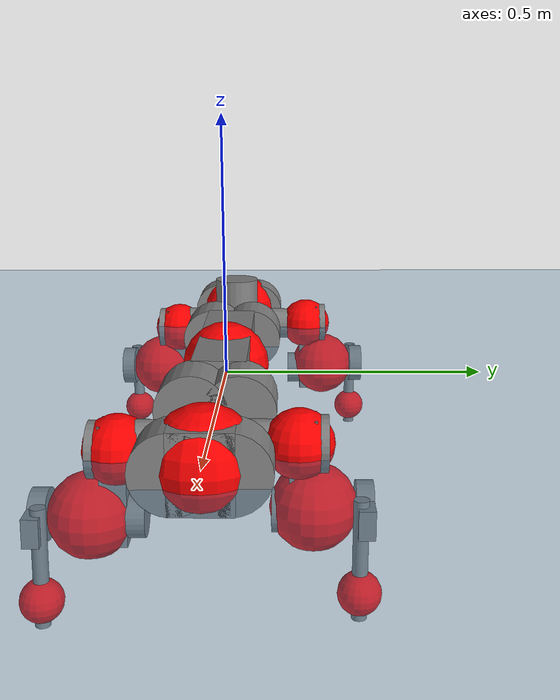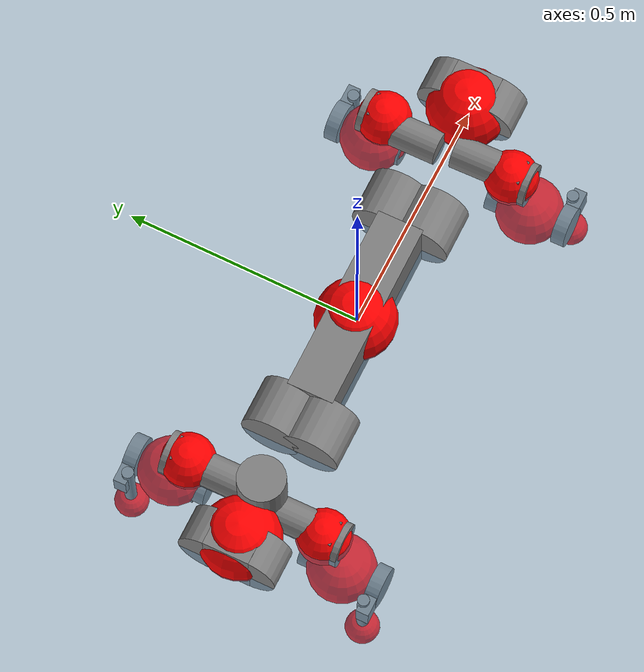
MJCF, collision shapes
<mujoco model="anymal_c">
  <compiler angle="radian" assetdir="assets" balanceinertia="true" inertiafromgeom="false"/>

  <option timestep="0.005" density="1.2" viscosity="2e-05"/>

  <size nkey="1"/>

  <visual>
    <quality shadowsize="8192"/>
    <map shadowclip="0.5"/>
  </visual>

  <default>
    <default class="/">
      <material specular="0" shininess="0.25"/>
      <geom contype="0" conaffinity="0" group="1" solref="-1000 -80"/>
      <site size="0.01 0.005 0.005" group="5"/>
      <general forcelimited="true" forcerange="-80 80" biastype="affine" gainprm="80" biasprm="0 -80 -2"/>
      <default class="anymal_c">
        <joint armature="0.01" damping="0.01" frictionloss="0.1"/>
        <default class="visual">
          <geom type="mesh" group="2"/>
          <default class="visual_zflip"/>
        </default>
        <default class="collision">
          <geom type="cylinder" group="3"/>
          <default class="foot">
            <geom size="0.03 0 0" type="sphere" condim="6" priority="1" friction="0.8 0.02 0.01" solimp="0.015 1 0.03"/>
          </default>
        </default>
      </default>
      <default class="reward_collision_sphere">
        <geom group="5" rgba="1 0 0 1"/>
      </default>
    </default>
  </default>

  <asset>
    <texture type="skybox" colorspace="auto" name="//unnamed_texture_0" builtin="gradient" rgb1="0.95 0.95 0.95" rgb2="0.95 0.95 0.95" width="100" height="600"/>
    <texture type="2d" colorspace="auto" name="texplane" builtin="checker" rgb1="0.345 0.575 0.748" rgb2="0.345 0.575 0.748" markrgb="1 1 1" width="512" height="512"/>
    <texture type="2d" colorspace="linear" name="base" file="base.png"/>
    <texture type="2d" colorspace="linear" name="top_shell" file="top_shell.png"/>
    <texture type="2d" colorspace="linear" name="bottom_shell" file="bottom_shell.png"/>
    <texture type="2d" colorspace="linear" name="remote" file="remote.png"/>
    <texture type="2d" colorspace="linear" name="hatch" file="hatch.png"/>
    <texture type="2d" colorspace="linear" name="handle" file="handle.png"/>
    <texture type="2d" colorspace="linear" name="face" file="face.png"/>
    <texture type="2d" colorspace="linear" name="battery" file="battery.png"/>
    <texture type="2d" colorspace="linear" name="lidar_cage" file="lidar_cage.png"/>
    <texture type="2d" colorspace="linear" name="depth_camera" file="depth_camera.png"/>
    <texture type="2d" colorspace="linear" name="wide_angle_camera" file="wide_angle_camera.png"/>
    <texture type="2d" colorspace="linear" name="lidar" file="lidar.png"/>
    <texture type="2d" colorspace="linear" name="drive" file="drive.png"/>
    <texture type="2d" colorspace="linear" name="hip_l" file="hip_l.png"/>
    <texture type="2d" colorspace="linear" name="shank_l" file="shank_l.png"/>
    <texture type="2d" colorspace="linear" name="foot" file="foot.png"/>
    <texture type="2d" colorspace="linear" name="thigh" file="thigh.png"/>
    <texture type="2d" colorspace="linear" name="shank_r" file="shank_r.png"/>
    <texture type="2d" colorspace="linear" name="hip_r" file="hip_r.png"/>
    <material name="MatPlane" class="/" texture="texplane" texuniform="true" texrepeat="2 2" specular="0.9" shininess="0.5"/>
    <material name="black_plastic" class="/" rgba="0.007 0.007 0.007 1"/>
    <material name="green" class="/" rgba="0.052 0.178 0.033 1"/>
    <material name="red" class="/" rgba="0.178 0.006 0.005 1"/>
    <material name="yellow" class="/" rgba="0.178 0.119 0.006 1"/>
    <material name="lwl" class="/" rgba="0.8 0.8 0.8 1"/>
    <material name="base" class="/" texture="base"/>
    <material name="top_shell" class="/" texture="top_shell"/>
    <material name="bottom_shell" class="/" texture="bottom_shell"/>
    <material name="hip_l" class="/" texture="hip_l"/>
    <material name="thigh" class="/" texture="thigh"/>
    <material name="shank_l" class="/" texture="shank_l"/>
    <material name="foot" class="/" texture="foot"/>
    <material name="hip_r" class="/" texture="hip_r"/>
    <material name="shank" class="/" texture="shank_r"/>
    <material name="hatch" class="/" texture="hatch"/>
    <material name="remote" class="/" texture="remote"/>
    <material name="handle" class="/" texture="handle"/>
    <material name="face" class="/" texture="face"/>
    <material name="depth_camera" class="/" texture="depth_camera"/>
    <material name="wide_angle_camera" class="/" texture="wide_angle_camera"/>
    <material name="battery" class="/" texture="battery"/>
    <material name="lidar_cage" class="/" texture="lidar_cage"/>
    <material name="lidar" class="/" texture="lidar"/>
    <material name="drive" class="/" texture="drive"/>
    <mesh name="base_0" class="/" file="base_0.obj"/>
    <mesh name="base_1" class="/" file="base_1.obj"/>
    <mesh name="base_2" class="/" file="base_2.obj"/>
    <mesh name="base_3" class="/" file="base_3.obj"/>
    <mesh name="base_4" class="/" file="base_4.obj"/>
    <mesh name="base_5" class="/" file="base_5.obj"/>
    <mesh name="top_shell" class="/" file="top_shell.obj"/>
    <mesh name="bottom_shell" class="/" file="bottom_shell.obj"/>
    <mesh name="remote" class="/" file="remote.obj"/>
    <mesh name="handle" class="/" file="handle.obj"/>
    <mesh name="face" class="/" file="face.obj"/>
    <mesh name="wide_angle_camera" class="/" file="wide_angle_camera.obj"/>
    <mesh name="depth_camera" class="/" file="depth_camera.obj"/>
    <mesh name="battery" class="/" file="battery.obj"/>
    <mesh name="lidar_cage" class="/" file="lidar_cage.obj"/>
    <mesh name="lidar" class="/" file="lidar.obj"/>
    <mesh name="drive" class="/" file="drive.obj"/>
    <mesh name="hip_l" class="/" file="hip_l.obj"/>
    <mesh name="thigh" class="/" file="thigh.obj"/>
    <mesh name="shank_l" class="/" file="shank_l.obj"/>
    <mesh name="foot" class="/" file="foot.obj"/>
    <mesh name="hip_r" class="/" file="hip_r.obj"/>
    <mesh name="hatch" class="/" file="hatch.obj"/>
    <mesh name="shank_r" class="/" file="shank_r.obj"/>
  </asset>

  <worldbody>
    <geom name="floor" class="/" size="100 100 0.125" type="plane" group="0" material="MatPlane"/>
    <light name="toplight_shadow" class="/" pos="0 0 5" dir="0.0990148 0.0990148 -0.990148" type="directional" ambient="0.04 0.04 0.04" diffuse="0.55 0.55 0.55" specular="0.12 0.12 0.12"/>
    <light name="toplight_fill" class="/" pos="0 0 5" dir="0.0990148 0.0990148 -0.990148" type="directional" castshadow="false" ambient="0.04 0.04 0.04" diffuse="0.3 0.3 0.3" specular="0.08 0.08 0.08"/>
    <body name="trunk" childclass="anymal_c" pos="-0.00326088 5.63241e-05 0.0156493" quat="0.999973 -0.00473462 -0.00262862 0.00491661">
      <inertial pos="0.000377952 -0.0127923 0.0214987" quat="0.521045 0.446878 0.486634 0.54037" mass="6.01822" diaginertia="0.981182 0.0361269 0.00143833"/>
      <joint name="//unnamed_joint_0" type="free" armature="0" damping="0" frictionloss="0"/>
      <geom name="//unnamed_geom_1" class="visual" material="green" mesh="base_0"/>
      <geom name="//unnamed_geom_2" class="visual" material="yellow" mesh="base_1"/>
      <geom name="//unnamed_geom_3" class="visual" material="red" mesh="base_2"/>
      <geom name="//unnamed_geom_4" class="visual" material="black_plastic" mesh="base_3"/>
      <geom name="//unnamed_geom_5" class="visual" material="lwl" mesh="base_4"/>
      <geom name="//unnamed_geom_6" class="visual" material="base" mesh="base_5"/>
      <geom name="trunk_1" class="collision" size="0.203242 0.0490585 0.0630753" type="box"/>
      <geom name="trunk_2" class="collision" size="0.0630753 0.0508106" pos="0.246169 0.0409882 0" quat="0.707107 0 0.707107 0"/>
      <geom name="trunk_3" class="collision" size="0.0630753 0.0508106" pos="-0.246169 0.0409882 0" quat="0.707107 0 0.707107 0"/>
      <geom name="trunk_4" class="collision" size="0.0630753 0.0508106" pos="0.246169 -0.0409882 0" quat="0.707107 0 0.707107 0"/>
      <geom name="trunk_5" class="collision" size="0.0630753 0.0508106" pos="-0.246169 -0.0409882 0" quat="0.707107 0 0.707107 0"/>
      <geom name="//unnamed_geom_12" class="visual" material="top_shell" mesh="top_shell"/>
      <geom name="//unnamed_geom_13" class="visual" material="bottom_shell" mesh="bottom_shell"/>
      <geom name="//unnamed_geom_14" class="visual" material="remote" mesh="remote"/>
      <geom name="//unnamed_geom_15" class="visual" material="handle" mesh="handle"/>
      <geom name="//unnamed_geom_16" class="visual" pos="0.469136 0 0" quat="1 0 0 0" material="face" mesh="face"/>
      <geom name="trunk_6" class="collision" size="0.038546 0.0490585 0.0630753" pos="0.531386 0 0" type="box"/>
      <geom name="//unnamed_geom_18" class="collision" size="0.0630753 0.038546" pos="0.531386 0.0409882 0" quat="0.707107 0 0.707107 0"/>
      <geom name="//unnamed_geom_19" class="collision" size="0.0630753 0.038546" pos="0.531386 -0.0409882 0" quat="0.707107 0 0.707107 0"/>
      <geom name="//unnamed_geom_20" class="visual" pos="0.52247 0 -0.00557178" quat="0.965926 0 0.258819 0" material="depth_camera" mesh="depth_camera"/>
      <geom name="//unnamed_geom_21" class="visual" pos="0.58062 0 0.00576571" material="wide_angle_camera" mesh="wide_angle_camera"/>
      <geom name="//unnamed_geom_22" class="visual_zflip" pos="-0.469136 0 0" quat="0 0 0 1" material="face" mesh="face"/>
      <geom name="trunk_7" class="collision" size="0.038546 0.0490585 0.0630753" pos="-0.531386 0 0" quat="0 0 0 1" type="box"/>
      <geom name="//unnamed_geom_24" class="collision" size="0.0630753 0.038546" pos="-0.531386 -0.0409882 0" quat="0 -0.707107 0 0.707107"/>
      <geom name="//unnamed_geom_25" class="collision" size="0.0630753 0.038546" pos="-0.531386 0.0409882 0" quat="0 -0.707107 0 0.707107"/>
      <geom name="//unnamed_geom_26" class="visual" pos="-0.52247 0 -0.00557178" quat="0 -0.258819 0 0.965926" material="depth_camera" mesh="depth_camera"/>
      <geom name="//unnamed_geom_27" class="visual_zflip" pos="-0.58062 0 0.00576571" quat="0 0 0 1" material="wide_angle_camera" mesh="wide_angle_camera"/>
      <geom name="//unnamed_geom_28" class="visual" material="battery" mesh="battery"/>
      <geom name="//unnamed_geom_29" class="visual" pos="0 0.0375716 0.0168633" quat="0.683013 -0.183013 0.183013 0.683013" material="depth_camera" mesh="depth_camera"/>
      <geom name="//unnamed_geom_30" class="visual" pos="0 -0.0375716 0.0168633" quat="0.683013 0.183013 0.183013 -0.683013" material="depth_camera" mesh="depth_camera"/>
      <geom name="//unnamed_geom_31" class="visual" pos="-0.41198 0 0.0283086" quat="1 0 0 0" material="lidar_cage" mesh="lidar_cage"/>
      <geom name="trunk_8" class="collision" size="0.0490585 0.0420502" pos="-0.41198 0 0.0514177"/>
      <geom name="//unnamed_geom_33" class="visual" pos="-0.41198 -0.000214614 0.0547685" quat="0.707107 0 0 -0.707107" material="lidar" mesh="lidar"/>
      <geom name="//unnamed_geom_34" class="visual" pos="0.339431 0.0608255 3.45682e-09" quat="0.258819 0.965926 0 0" material="drive" mesh="drive"/>
      <geom name="//unnamed_geom_35" class="visual" pos="0.339431 -0.0608255 -3.45682e-09" quat="0.258819 -0.965926 0 0" material="drive" mesh="drive"/>
      <geom name="//unnamed_geom_36" class="visual" pos="-0.339431 0.0608255 -3.45682e-09" quat="0 0 0.965926 -0.258819" material="drive" mesh="drive"/>
      <geom name="//unnamed_geom_37" class="visual" pos="-0.339431 -0.0608255 3.45682e-09" quat="0 0 -0.965926 -0.258819" material="drive" mesh="drive"/>
      <geom name="//unnamed_geom_38" class="visual" pos="0.13129 0 0.028116" quat="1 0 0 0" material="hatch" mesh="hatch"/>
      <geom name="//unnamed_geom_39" class="reward_collision_sphere" size="0.0841003"/>
      <geom name="//unnamed_geom_40" class="reward_collision_sphere" size="0.0841003" pos="0.509316 0 0"/>
      <geom name="//unnamed_geom_41" class="reward_collision_sphere" size="0.0841003" pos="-0.509316 0 0"/>
      <site name="imu" pos="0.259657 -0.0436249 0.0788889" size="0.00700836"/>
      <camera name="track" pos="0 -1.17109 0" quat="0.707107 0.707107 0 0" mode="trackcom"/>
      <camera name="ego_camera" pos="0.509316 0 -0.015406" quat="-0.5 -0.5 0.5 0.5"/>
      <body name="LF_HIP" pos="0.339298 0.0542469 -0.00742643" quat="0.259094 0.965852 -0.000851555 -0.000196729">
        <inertial pos="0.0782228 -0.00845465 0.0119931" quat="-0.173715 0.744268 -0.108204 0.635752" mass="1.06013" diaginertia="0.0104097 0.000406802 3.09228e-05"/>
        <joint name="LF_HAA" pos="0 0 0" axis="0.997749 -0.0616264 0.0264312" stiffness="0.0575692" range="-0.714731 0.307535" armature="0.00732186" damping="0.0654197" frictionloss="0.0384061"/>
        <geom name="//unnamed_geom_42" class="visual" pos="0 0.000203349 -3.33999e-05" quat="0.258819 -0.965926 0 0" material="hip_l" mesh="hip_l"/>
        <geom name="//unnamed_geom_43" class="visual" pos="0.0677956 -0.0748851 -0.0417527" quat="0.183013 -0.683013 0.683013 0.183013" material="drive" mesh="drive"/>
        <geom name="//unnamed_geom_44" class="collision" size="0.0350418 0.0490585" pos="0.0677956 -0.007003 -0.00265947" quat="-0.353553 -0.612372 0.612372 -0.353553"/>
        <body name="LF_THIGH" pos="0.0803304 -0.0505517 -0.0287981" quat="0.183015 -0.683012 0.683013 0.183014">
          <inertial pos="0.0348347 -7.11918e-05 -0.0927652" quat="0.991155 0.0212474 -0.0834047 0.101019" mass="1.15801" diaginertia="0.0618873 0.00241115 4.79828e-05"/>
          <joint name="LF_HFE" pos="0 0 0" axis="0.999986 -0.00533435 1.12777e-05" stiffness="0.0260187" range="-2.9533 3.12832" armature="0.0104545" damping="0" frictionloss="0.0700517"/>
          <geom name="//unnamed_geom_45" class="visual" pos="0.0108686 1.71263e-05 0" quat="0.707107 0 0 -0.707107" material="thigh" mesh="thigh"/>
          <geom name="//unnamed_geom_46" class="collision" size="0.0455543 0.0280334" pos="0.0452725 0 0" quat="0.5 0.5 -0.5 -0.5"/>
          <geom name="//unnamed_geom_47" class="collision" size="0.0262814 0.0210251 0.099038" pos="0.0339544 0 -0.0544272" quat="0.707107 0 0 -0.707107" type="box"/>
          <geom name="//unnamed_geom_48" class="visual" pos="0.113521 0 -0.109768" quat="1 0 0 0" material="drive" mesh="drive"/>
          <geom name="//unnamed_geom_49" class="collision" size="0.0350418 0.0490585" pos="0.0342939 0 -0.109768" quat="0.707107 0 0.707107 0"/>
          <geom name="//unnamed_geom_50" class="reward_collision_sphere" size="0.0560669" pos="0.0282953 0 0"/>
          <body name="LF_SHANK" pos="0.108044 0.00267432 -0.105339" quat="1 -3.84221e-05 5.53497e-05 1.59985e-05">
            <inertial pos="0.0229923 -0.0209011 -0.0299902" quat="0.99227 -0.119826 -0.00370936 -0.0320558" mass="0.205362" diaginertia="0.0226375 0.000624452 9.64493e-06"/>
            <joint name="LF_KFE" pos="0 0 0" axis="0.999998 0.0018497 -0.000882727" stiffness="0.00834227" range="-2.80893 2.94612" armature="0.00950815" damping="0.031427" frictionloss="0.013848"/>
            <geom name="//unnamed_geom_51" class="visual" pos="0.003544 0.0188968 0" quat="0.707107 0 0 -0.707107" material="shank_l" mesh="shank_l"/>
            <geom name="LF_kfe_act" class="collision" size="0.0420502 0.0140167" pos="0.0226362 0 0" quat="0.5 0.5 -0.5 -0.5"/>
            <geom name="//unnamed_geom_53" class="collision" size="0.0402974 0.0236532 0.0133159" pos="0.0226362 -0.0336683 0" quat="0.5 0.5 -0.5 -0.5" type="box"/>
            <geom name="//unnamed_geom_54" class="visual" pos="0.0147693 -0.045409 -0.130169" quat="0.382683 0 0 -0.92388" material="foot" mesh="foot"/>
            <geom name="LF_calf" class="collision" size="0.0122646 0.0989945" pos="0.0147702 -0.0514987 -0.0650847" quat="0.707107 0 0 -0.707107"/>
            <geom name="LF_foot" class="foot" size="0.0286207" pos="0.0147702 -0.0514987 -0.121504" quat="0.707107 0 0 -0.707107"/>
            <geom name="//unnamed_geom_57" class="reward_collision_sphere" size="0.0700836" pos="-0.0565906 0 0"/>
            <geom name="//unnamed_geom_58" class="reward_collision_sphere" size="0.0350418" pos="0.0147702 -0.0514987 -0.121504"/>
            <site name="LF_foot" class="foot" pos="0.0147702 -0.0514987 -0.121504" quat="0.707107 0 0 -0.707107" size="0.00700836"/>
          </body>
        </body>
      </body>
      <body name="RF_HIP" pos="0.348833 -0.0614691 -0.00556618" quat="0.254058 -0.967168 -0.00477889 0.00417481">
        <inertial pos="0.0715704 0.00915184 -0.00483035" quat="0.106208 0.733266 0.114495 0.661764" mass="0.826802" diaginertia="0.0111167 0.000368837 2.87296e-05"/>
        <joint name="RF_HAA" pos="0 0 0" axis="0.998932 0.0419941 0.0192702" stiffness="0.0647441" range="-0.179448 0.901009" armature="0.00538326" damping="0.0594319" frictionloss="0.0333712"/>
        <geom name="//unnamed_geom_59" class="visual" pos="0 -0.000203347 -3.33998e-05" quat="0.258819 0.965926 0 0" material="hip_r" mesh="hip_r"/>
        <geom name="//unnamed_geom_60" class="visual" pos="0.0677955 0.0748851 -0.0417527" quat="0.183013 0.683013 0.683013 -0.183013" material="drive" mesh="drive"/>
        <geom name="//unnamed_geom_61" class="collision" size="0.0350418 0.0490585" pos="0.0677956 0.007003 -0.00265947" quat="-0.353553 0.612372 0.612372 0.353553"/>
        <body name="RF_THIGH" pos="0.0672262 0.0522461 -0.013858" quat="0.180456 0.681398 0.685522 -0.182186">
          <inertial pos="0.0433224 -0.000526516 -0.0882229" quat="0.992959 0.0235624 -0.0781443 0.0858543" mass="0.888944" diaginertia="0.0546413 0.00235806 3.1626e-05"/>
          <joint name="RF_HFE" pos="0 0 0" axis="0.999991 0.00410112 0.000911862" range="-3.10731 3.33106" armature="0.0102119" damping="0.0855633" frictionloss="0.113345"/>
          <geom name="//unnamed_geom_62" class="visual" pos="0.0108686 1.71263e-05 0" quat="0.707107 0 0 -0.707107" material="thigh" mesh="thigh"/>
          <geom name="//unnamed_geom_63" class="collision" size="0.0455543 0.0280334" pos="0.0452725 0 0" quat="0.5 0.5 0.5 0.5"/>
          <geom name="//unnamed_geom_64" class="collision" size="0.0262814 0.0210251 0.099038" pos="0.0339544 0 -0.0544272" quat="0.707107 0 0 0.707107" type="box"/>
          <geom name="//unnamed_geom_65" class="visual" pos="0.113521 0 -0.109768" quat="1 0 0 0" material="drive" mesh="drive"/>
          <geom name="//unnamed_geom_66" class="collision" size="0.0350418 0.0490585" pos="0.0342939 0 -0.109768" quat="0.707107 0 0.707107 0"/>
          <geom name="//unnamed_geom_67" class="reward_collision_sphere" size="0.0560669" pos="0.0282953 0 0"/>
          <body name="RF_SHANK" pos="0.128898 -0.00261709 -0.109553" quat="0.999997 -0.00130079 -0.00182268 -0.000673127">
            <inertial pos="0.0116529 0.0501572 -0.0434757" quat="0.980224 0.188047 -0.00921069 0.0609456" mass="0.250552" diaginertia="0.0228275 0.000622438 1.26385e-05"/>
            <joint name="RF_KFE" pos="0 0 0" axis="1 -0.000480079 -0.000523651" stiffness="0.02421" range="-3.11423 3.20474" armature="0.00764467" damping="0.0598707" frictionloss="0.100159"/>
            <geom name="//unnamed_geom_68" class="visual" pos="0.00354398 -0.0188968 0" quat="0.707107 0 0 0.707107" material="shank" mesh="shank_r"/>
            <geom name="RF_kfe_act" class="collision" size="0.0420502 0.0140167" pos="0.0226362 0 0" quat="0.5 0.5 0.5 0.5"/>
            <geom name="//unnamed_geom_70" class="collision" size="0.0402974 0.0236532 0.0133159" pos="0.0226362 0.0336683 0" quat="0.5 0.5 0.5 0.5" type="box"/>
            <geom name="//unnamed_geom_71" class="visual" pos="0.014771 0.045409 -0.130169" quat="0.382683 0 0 0.92388" material="foot" mesh="foot"/>
            <geom name="RF_calf" class="collision" size="0.0122646 0.0989945" pos="0.0147702 0.0514987 -0.0650847" quat="0.707107 0 0 0.707107"/>
            <geom name="RF_foot" class="foot" size="0.032087" pos="0.0147702 0.0514987 -0.121504" quat="0.707107 0 0 0.707107"/>
            <geom name="//unnamed_geom_74" class="reward_collision_sphere" size="0.0700836" pos="-0.0565906 0 0"/>
            <geom name="//unnamed_geom_75" class="reward_collision_sphere" size="0.0350418" pos="0.0147702 0.0514987 -0.121504"/>
            <site name="RF_foot" class="foot" pos="0.0147702 0.0514987 -0.121504" quat="0.707107 0 0 0.707107" size="0.00700836"/>
          </body>
        </body>
      </body>
      <body name="LH_HIP" pos="-0.338475 0.0718375 -0.011194" quat="0.00141586 -0.00212369 0.966383 -0.257095">
        <inertial pos="0.0704247 0.0230589 0.0125281" quat="0.114205 0.69983 0.138893 0.691306" mass="1.11194" diaginertia="0.0134894 0.000344236 3.59662e-05"/>
        <joint name="LH_HAA" pos="0 0 0" axis="0.99774 0.0619101 -0.0261052" range="-0.218911 0.432086" armature="0.00238568" damping="0.00646613" frictionloss="0.06841"/>
        <geom name="//unnamed_geom_76" class="visual" pos="0 -0.000203347 -3.33998e-05" quat="-0.258819 -0.965926 0 0" material="hip_r" mesh="hip_r"/>
        <geom name="//unnamed_geom_77" class="visual" pos="0.0677955 0.0748851 -0.0417527" quat="0.183013 0.683013 0.683013 -0.183013" material="drive" mesh="drive"/>
        <geom name="//unnamed_geom_78" class="collision" size="0.0350418 0.0490585" pos="0.0677956 0.007003 -0.00265947" quat="-0.353553 0.612372 0.612372 0.353553"/>
        <body name="LH_THIGH" pos="0.0668263 0.055907 -0.0314234" quat="0.185522 0.685728 0.679065 -0.185013">
          <inertial pos="0.0184581 0.0115811 -0.0783749" quat="0.992752 -0.00546196 -0.0805513 0.0890184" mass="0.851279" diaginertia="0.0361937 0.00155032 2.41283e-05"/>
          <joint name="LH_HFE" pos="0 0 0" axis="0.996687 0.079345 -0.0178576" range="-2.93183 3.10427" armature="0.00574453" damping="0.0875787" frictionloss="0.0416522"/>
          <geom name="//unnamed_geom_79" class="visual" pos="0.0108686 1.71263e-05 0" quat="0.707107 0 0 -0.707107" material="thigh" mesh="thigh"/>
          <geom name="//unnamed_geom_80" class="collision" size="0.0455543 0.0280334" pos="0.0452725 0 0" quat="0.5 0.5 -0.5 -0.5"/>
          <geom name="//unnamed_geom_81" class="collision" size="0.0262814 0.0210251 0.099038" pos="0.0339544 0 -0.0544272" quat="0.707107 0 0 -0.707107" type="box"/>
          <geom name="//unnamed_geom_82" class="visual" pos="0.113521 0 -0.109768" quat="1 0 0 0" material="drive" mesh="drive"/>
          <geom name="//unnamed_geom_83" class="collision" size="0.0350418 0.0490585" pos="0.0342939 0 -0.109768" quat="0.707107 0 0.707107 0"/>
          <geom name="//unnamed_geom_84" class="reward_collision_sphere" size="0.0560669" pos="0.0282953 0 0"/>
          <body name="LH_SHANK" pos="0.123439 -0.000449058 -0.0995726" quat="0.999981 -0.00494268 0.00345599 -0.00109583">
            <inertial pos="0.0214767 0.0248043 -0.0151556" quat="0.986779 0.15607 0.0413273 -0.0141994" mass="0.22624" diaginertia="0.021727 0.000806211 9.77269e-06"/>
            <joint name="LH_KFE" pos="0 0 0" axis="0.999999 0.001245 0.000317868" stiffness="0.019981" range="-3.22024 3.47535" armature="0.00235617" damping="0.0824142" frictionloss="0.0684742"/>
            <geom name="//unnamed_geom_85" class="visual" pos="0.00354398 -0.0188968 0" quat="-0.707107 0 0 -0.707107" material="shank" mesh="shank_r"/>
            <geom name="LH_kfe_act" class="collision" size="0.0420502 0.0140167" pos="0.0226362 0 0" quat="0.5 0.5 -0.5 -0.5"/>
            <geom name="//unnamed_geom_87" class="collision" size="0.0402974 0.0236532 0.0133159" pos="0.0226362 0.0336683 0" quat="0.5 0.5 -0.5 -0.5" type="box"/>
            <geom name="//unnamed_geom_88" class="visual" pos="0.014771 0.045409 -0.130169" quat="-0.382683 0 0 -0.92388" material="foot" mesh="foot"/>
            <geom name="LH_calf" class="collision" size="0.0122646 0.0989945" pos="0.0147702 0.0514987 -0.0650847" quat="0.707107 0 0 -0.707107"/>
            <geom name="LH_foot" class="foot" size="0.0153993" pos="0.0147702 0.0514987 -0.121504" quat="0.707107 0 0 -0.707107"/>
            <geom name="//unnamed_geom_91" class="reward_collision_sphere" size="0.0700836" pos="-0.0565906 0 0"/>
            <geom name="//unnamed_geom_92" class="reward_collision_sphere" size="0.0350418" pos="0.0147702 0.0514987 -0.121504"/>
            <site name="LH_foot" class="foot" pos="0.0147702 0.0514987 -0.121504" quat="0.707107 0 0 -0.707107" size="0.00700836"/>
          </body>
        </body>
      </body>
      <body name="RH_HIP" pos="-0.35604 -0.0633067 -0.0138848" quat="0.000957298 0.000529188 -0.96581 -0.259248">
        <inertial pos="0.0767352 0.000950681 -0.00330555" quat="-0.194013 0.694248 -0.112192 0.683953" mass="0.932456" diaginertia="0.00711627 0.000269222 1.98864e-05"/>
        <joint name="RH_HAA" pos="0 0 0" axis="0.996495 0.0758734 0.0352146" range="-0.554825 0.503171" armature="0.00722393" damping="0.0212327" frictionloss="0.0121928"/>
        <geom name="//unnamed_geom_93" class="visual" pos="0 0.000203349 -3.33999e-05" quat="-0.258819 0.965926 0 0" material="hip_l" mesh="hip_l"/>
        <geom name="//unnamed_geom_94" class="visual" pos="0.0677956 -0.0748851 -0.0417527" quat="-0.183013 0.683013 -0.683013 -0.183013" material="drive" mesh="drive"/>
        <geom name="//unnamed_geom_95" class="collision" size="0.0350418 0.0490585" pos="0.0677956 -0.007003 -0.00265947" quat="0.353553 0.612372 -0.612372 0.353553"/>
        <body name="RH_THIGH" pos="0.0709425 -0.0485655 -0.0104048" quat="-0.181468 0.682916 -0.683479 -0.183173">
          <inertial pos="0.027158 0.00911351 -0.0806807" quat="0.988635 0.0355234 -0.08626 0.117892" mass="1.37036" diaginertia="0.0504155 0.00222642 3.57927e-05"/>
          <joint name="RH_HFE" pos="0 0 0" axis="0.999216 -0.0150297 -0.0366175" range="-3.14385 3.38223" armature="0.00750792" damping="0.0367865" frictionloss="0.0894988"/>
          <geom name="//unnamed_geom_96" class="visual" pos="0.0108686 1.71263e-05 0" quat="0.707107 0 0 -0.707107" material="thigh" mesh="thigh"/>
          <geom name="//unnamed_geom_97" class="collision" size="0.0455543 0.0280334" pos="0.0452725 0 0" quat="0.5 0.5 0.5 0.5"/>
          <geom name="//unnamed_geom_98" class="collision" size="0.0262814 0.0210251 0.099038" pos="0.0339544 0 -0.0544272" quat="0.707107 0 0 0.707107" type="box"/>
          <geom name="//unnamed_geom_99" class="visual" pos="0.113521 0 -0.109768" quat="1 0 0 0" material="drive" mesh="drive"/>
          <geom name="//unnamed_geom_100" class="collision" size="0.0350418 0.0490585" pos="0.0342939 0 -0.109768" quat="0.707107 0 0.707107 0"/>
          <geom name="//unnamed_geom_101" class="reward_collision_sphere" size="0.0560669" pos="0.0282953 0 0"/>
          <body name="RH_SHANK" pos="0.128275 -0.0119383 -0.0981712" quat="0.999965 -0.000880376 0.00801456 -0.00236296">
            <inertial pos="-0.000187803 -0.0362932 -0.0307509" quat="0.990796 -0.0969557 0.0033538 -0.0944027" mass="0.187125" diaginertia="0.0173277 0.000493713 9.82686e-06"/>
            <joint name="RH_KFE" pos="0 0 0" axis="0.996748 0.0104242 0.0799013" stiffness="0.0737128" range="-3.41064 3.24721" armature="0.00690137" damping="0.077146" frictionloss="0.0900153"/>
            <geom name="//unnamed_geom_102" class="visual" pos="0.003544 0.0188968 0" quat="0.707107 0 0 -0.707107" material="shank_l" mesh="shank_l"/>
            <geom name="RH_kfe_act" class="collision" size="0.0420502 0.0140167" pos="0.0226362 0 0" quat="0.5 0.5 0.5 0.5"/>
            <geom name="//unnamed_geom_104" class="collision" size="0.0402974 0.0236532 0.0133159" pos="0.0226362 -0.0336683 0" quat="0.5 0.5 0.5 0.5" type="box"/>
            <geom name="//unnamed_geom_105" class="visual" pos="0.0147693 -0.045409 -0.130169" quat="0.382683 0 0 -0.92388" material="foot" mesh="foot"/>
            <geom name="RH_calf" class="collision" size="0.0122646 0.0989945" pos="0.0147702 -0.0514987 -0.0650847" quat="0.707107 0 0 0.707107"/>
            <geom name="RH_foot" class="foot" size="0.0254508" pos="0.0147702 -0.0514987 -0.121504" quat="0.707107 0 0 0.707107"/>
            <geom name="//unnamed_geom_108" class="reward_collision_sphere" size="0.0700836" pos="-0.0565906 0 0"/>
            <geom name="//unnamed_geom_109" class="reward_collision_sphere" size="0.0350418" pos="0.0147702 -0.0514987 -0.121504"/>
            <site name="RH_foot" class="foot" pos="0.0147702 -0.0514987 -0.121504" quat="0.707107 0 0 0.707107" size="0.00700836"/>
          </body>
        </body>
      </body>
    </body>
  </worldbody>

  <contact>
    <pair class="/" geom1="floor" geom2="LF_foot" name="//unnamed_contact_0"/>
    <pair class="/" geom1="floor" geom2="RF_foot" name="//unnamed_contact_1"/>
    <pair class="/" geom1="floor" geom2="LH_foot" name="//unnamed_contact_2"/>
    <pair class="/" geom1="floor" geom2="RH_foot" name="//unnamed_contact_3"/>
  </contact>

  <actuator>
    <general name="LF_HAA" class="/" joint="LF_HAA" forcerange="-57.5773 57.5773" gainprm="49.7237" biasprm="0 -49.7237 -1.6361"/>
    <general name="LF_HFE" class="/" joint="LF_HFE" forcerange="-47.1666 47.1666" gainprm="49.7237" biasprm="0 -49.7237 -1.6361"/>
    <general name="LF_KFE" class="/" joint="LF_KFE" forcerange="-36.0738 36.0738" gainprm="49.7237" biasprm="0 -49.7237 -1.6361"/>
    <general name="RF_HAA" class="/" joint="RF_HAA" forcerange="-64.3283 64.3283" gainprm="49.7237" biasprm="0 -49.7237 -1.6361"/>
    <general name="RF_HFE" class="/" joint="RF_HFE" forcerange="-36.7136 36.7136" gainprm="49.7237" biasprm="0 -49.7237 -1.6361"/>
    <general name="RF_KFE" class="/" joint="RF_KFE" forcerange="-56.5342 56.5342" gainprm="49.7237" biasprm="0 -49.7237 -1.6361"/>
    <general name="LH_HAA" class="/" joint="LH_HAA" forcerange="-58.5792 58.5792" gainprm="49.7237" biasprm="0 -49.7237 -1.6361"/>
    <general name="LH_HFE" class="/" joint="LH_HFE" forcerange="-88.6661 88.6661" gainprm="49.7237" biasprm="0 -49.7237 -1.6361"/>
    <general name="LH_KFE" class="/" joint="LH_KFE" forcerange="-26.3895 26.3895" gainprm="49.7237" biasprm="0 -49.7237 -1.6361"/>
    <general name="RH_HAA" class="/" joint="RH_HAA" forcerange="-57.3909 57.3909" gainprm="49.7237" biasprm="0 -49.7237 -1.6361"/>
    <general name="RH_HFE" class="/" joint="RH_HFE" forcerange="-70.3252 70.3252" gainprm="49.7237" biasprm="0 -49.7237 -1.6361"/>
    <general name="RH_KFE" class="/" joint="RH_KFE" forcerange="-35.2054 35.2054" gainprm="49.7237" biasprm="0 -49.7237 -1.6361"/>
  </actuator>

  <sensor>
    <gyro site="imu" name="imu_angular_velocity"/>
    <velocimeter site="imu" name="imu_linear_velocity"/>
    <framelinvel objtype="site" objname="LF_foot" name="LF_foot_global_linear_velocity"/>
    <framelinvel objtype="site" objname="RF_foot" name="RF_foot_global_linear_velocity"/>
    <framelinvel objtype="site" objname="LH_foot" name="LH_foot_global_linear_velocity"/>
    <framelinvel objtype="site" objname="RH_foot" name="RH_foot_global_linear_velocity"/>
  </sensor>

  <keyframe>
    <key name="home" qpos="0 0 0.55 1 0 0 0 0 0.4 -0.8 0 -0.4 0.8 0 -0.4 0.8 0 0.4 -0.8"/>
  </keyframe>
</mujoco>
